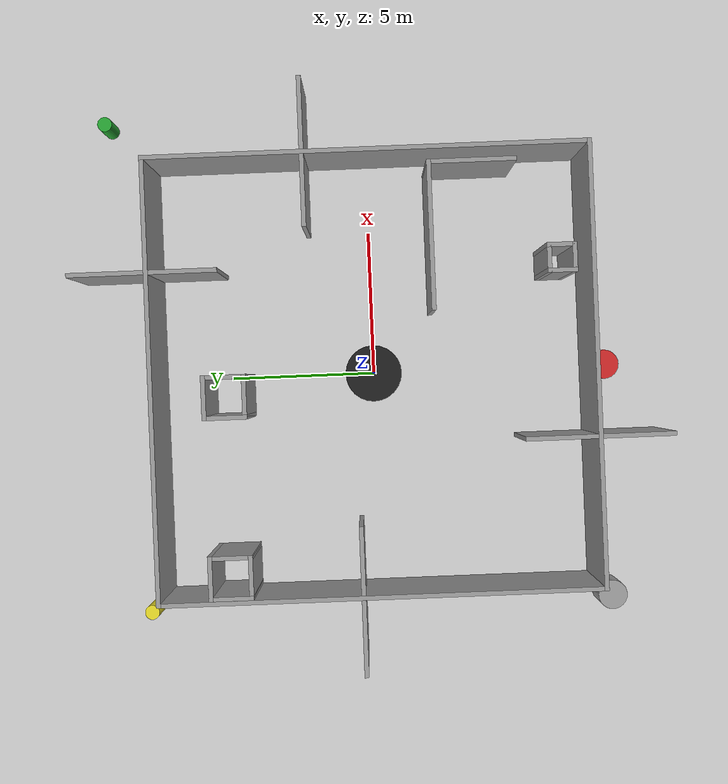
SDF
<?xml version="1.0" ?>
<sdf version="1.7">
  <world name="default">

    <!-- World properties -->
    <gravity>0 0 -9.8</gravity>
    <magnetic_field>6e-06 2.3e-05 -4.2e-05</magnetic_field>
    <atmosphere type='adiabatic'/>
    <scene>
      <ambient>0.4 0.4 0.4 1</ambient>
      <background>0.7 0.7 0.7 1</background>
      <shadows>0</shadows>
    </scene>
    <audio>
      <device>default</device>
    </audio>
    <wind/>
    <spherical_coordinates>
      <surface_model>EARTH_WGS84</surface_model>
      <latitude_deg>0</latitude_deg>
      <longitude_deg>0</longitude_deg>
      <elevation>0</elevation>
      <heading_deg>0</heading_deg>
    </spherical_coordinates>

    <physics type="ode">

      <!-- Physics x1 realtime-->

      <!-- Physics x2 realtime-->

      <!-- Physics x3 realtime-->

      <!-- Physics x4 realtime-->
      <max_step_size>0.004</max_step_size>
      <real_time_update_rate>1000.0</real_time_update_rate>
      <real_time_factor>4</real_time_factor>

      <!-- Physics x8 realtime-->

      <!-- Physics x10 realtime-->

      <ode>
        <solver>
          <type>quick</type>
          <iters>150</iters>
          <precon_iters>0</precon_iters>
          <sor>1.400000</sor>
          <use_dynamic_moi_rescaling>1</use_dynamic_moi_rescaling>
        </solver>
        <constraints>
          <cfm>0.00001</cfm>
          <erp>0.2</erp>
          <contact_max_correcting_vel>2000.000000</contact_max_correcting_vel>
          <contact_surface_layer>0.01000</contact_surface_layer>
        </constraints>
      </ode>
    </physics>

    <plugin name="gazebo_ros_state" filename="libgazebo_ros_state.so">
      <ros>
        <namespace>/gazebo_drl</namespace>
        <argument>model_states:=model_states_plug</argument>
        <argument>link_states:=link_states_plug</argument>
      </ros>
      <update_rate>10.0</update_rate>
    </plugin>

    <!-- A camera -->
    <gui fullscreen='0'>
      <camera name='user_camera'>
        <pose>0 0 27.8175 3.14159 1.57079 3.14159</pose>
        <view_controller>orbit</view_controller>
        <projection_type>perspective</projection_type>
      </camera>
    </gui>

    <!-- A global light source -->
    <include>
      <uri>model://sun</uri>
    </include>

    <!-- A ground plane -->
    <include>
      <uri>model://ground_plane</uri>
    </include>

    <!-- Goal -->
    <include>
      <uri>model://goal_area</uri>
      <pose>0.0 0.0 0.0 0 0 0</pose>
    </include>

    <!-- Walls -->

    <include>
      <uri>model://wall_outler</uri>
    </include>

    <!-- Top Left Area -->
    <include>
      <uri>model://wall_single_5m</uri>
      <name>wall_single_5m_1</name>
      <pose>4.0 9.5 0.0 0 0 0</pose>
    </include>

    <include>
      <uri>model://wall_single_5m</uri>
      <name>wall_single_5m_2</name>
      <pose>5.5 2.5 0.0 0 0 1.57</pose>
    </include>

    <!-- Top Right Area -->
    <include>
      <uri>model://wall_Lshape_2</uri>
      <name>wall_Lshape_2_1</name>
      <pose>4.5 -3.5 0.0 0 0 0</pose>
    </include>

    <include>
      <uri>model://pillar_2</uri>
      <name>pillar_2_1</name>
      <pose>5.0 -5.0 0.0 0 0 0</pose>
    </include>

    <!-- Bottom Left Area -->
    <include>
      <uri>model://pillar_1</uri>
      <name>pillar_1_1</name>
      <pose>1.0 5.0 0.0 0 0 0</pose>
    </include>

    <include>
      <uri>model://pillar_1</uri>
      <name>pillar_1_2</name>
      <pose>-5.0 5.0 0.0 0 0 0</pose>
    </include>

    <!-- Bottom Right Area -->
    <include>
      <uri>model://wall_single_5m</uri>
      <name>wall_single_5m_3</name>
      <pose>-2.0 -5.5 0.0 0 0 0</pose>
    </include>

    <include>
      <uri>model://wall_single_5m</uri>
      <name>wall_single_5m_4</name>
      <pose>-9.5 1.0 0.0 0 0 1.57</pose>
    </include>

    <!-- Obstacle -->

    <include>
      <uri>model://cylinder_obstacle_1</uri>
      <pose>-8.0 -8.0 0.5 0 0 0</pose>
    </include>

    <include>
      <uri>model://cylinder_obstacle_2</uri>
      <pose>0.0 -8.0 0.5 0 0 0</pose>
    </include>

    <include>
      <uri>model://cylinder_obstacle_3</uri>
      <pose>9.0 9.0 0.5 0 0 0</pose>
    </include>

    <include>
      <uri>model://cylinder_obstacle_4</uri>
      <pose>-8.0 8.0 0.5 0 0 0</pose>
    </include>

  </world>
</sdf>
